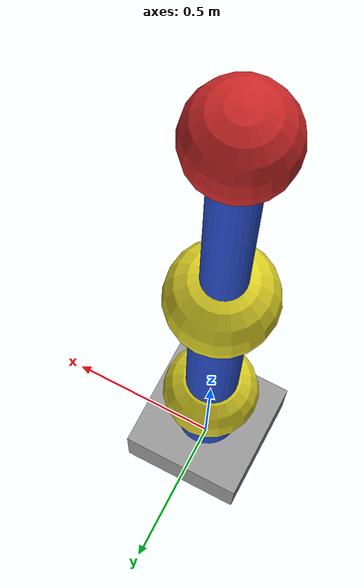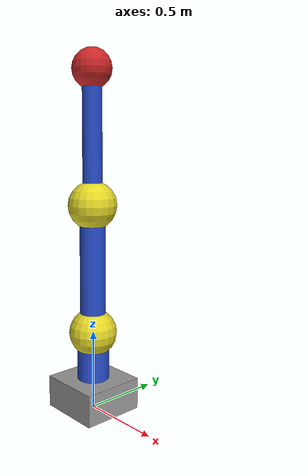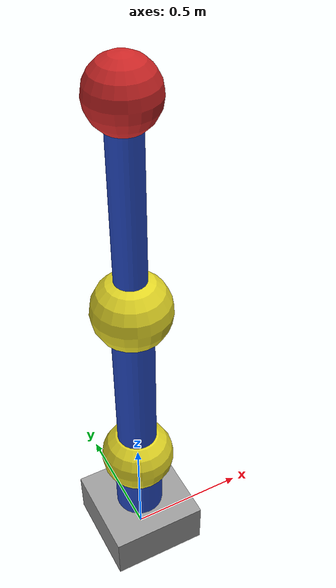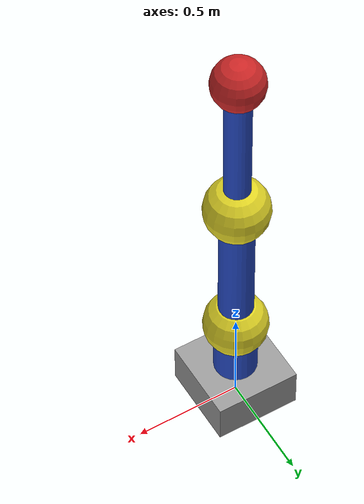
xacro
<?xml version="1.0"?>
<robot xmlns:xacro="http://www.ros.org/wiki/xacro">

    <xacro:property name="base_height" value="0.2"/>
    <xacro:property name="base_size" value="0.4" />
    <xacro:property name="joint_radius_1" value="0.1" />
    <xacro:property name="joint_length_1" value="0.3" />
    <xacro:property name="joint_length_2" value="0.8"/>

    <xacro:property name="solid_radius" value="0.15"/>

    <link name="base_link">
        <visual>
            <geometry>
                <box size="${base_size} ${base_size} ${base_height}"/>
            </geometry>
            <origin xyz="0 0 ${base_height/2}" rpy="0 0 0"/>
            <material name="grey"/>
        </visual>

        <collision>
            <geometry>
                <box size="${base_size} ${base_size} ${base_height}"/>
            </geometry>
            <origin xyz="0 0 ${base_height/2}" rpy="0 0 0"/>
        </collision>

        <xacro:box_inertia m="50" l="${2*base_size}" w="${2*base_size}" h="${2*base_height}"
                           xyz="0 0 ${base_height/2}" rpy="0 0 0"/>

    </link>

    <link name="base_footprint"/>

    <link name="link_1">
        <visual>
            <geometry>
                <cylinder radius="${joint_radius_1}" length="${joint_length_1}"/>
            </geometry>
            <origin xyz="0 0 ${joint_length_1/2}" rpy="0 0 0 "/>
            <material name="blue"/>
        </visual>

        <collision>
            <geometry>
                <cylinder radius="${joint_radius_1}" length="${joint_length_1}"/>
            </geometry>
            <origin xyz="0 0 ${joint_length_1/2}" rpy="0 0 0"/>
        </collision>

        <xacro:cylinder_inertia m="1.0" r="${2*joint_radius_1}" l="${2*joint_length_1}"
                                xyz="0 0 ${joint_length_1/2}" rpy="0 0 0"/>

    </link>

    <link name="solid_1">
        <visual>
            <geometry>
                <sphere radius="${solid_radius}"/>
            </geometry>
            <origin xyz="0 0 0" rpy="0 0 0"/>
            <material name="yellow"/>
        </visual>

        <collision>
            <geometry>
                <sphere radius="${solid_radius}"/>
            </geometry>
            <origin xyz="0 0 0" rpy="0 0 0"/>
        </collision>

        <xacro:sphere_inertia m="0.5" r="${2*solid_radius}" xyz="0 0 0" rpy="0 0 0"/>

    </link>

    <link name="link_2">
        <visual>
            <geometry>
                <cylinder radius="${joint_radius_1 * 0.8}" length="${joint_length_2}"/>
            </geometry>
            <origin xyz="0 0 ${joint_length_2/2}" rpy="0 0 0"/>
            <material name="blue"/>
        </visual>

        <collision>
            <geometry>
                <cylinder radius="${joint_radius_1 * 0.8}" length="${joint_length_2}"/>
            </geometry>
            <origin xyz="0 0 ${joint_length_2/2}" rpy="0 0 0"/>
        </collision>

        <xacro:cylinder_inertia m="1.0" r="${2*joint_radius_1 * 0.8}" l="${2*joint_length_2}"
                                xyz="0 0 ${joint_length_2/2}" rpy="0 0 0"/>

    </link>

    <link name="solid_2">
        <visual>
            <geometry>
                <sphere radius="${solid_radius}"/>
            </geometry>
            <origin xyz="0 0 0" rpy="0 0 0"/>
            <material name="yellow"/>
        </visual>

        <collision>
            <geometry>
                <sphere radius="${solid_radius}"/>
            </geometry>
            <origin xyz="0 0 0" rpy="0 0 0"/>
        </collision>

        <xacro:sphere_inertia m="0.5" r="${2*solid_radius}" xyz="0 0 0" rpy="0 0 0"/>

    </link>

    <link name="link_3">
        <visual>
            <geometry>
                <cylinder radius="${joint_radius_1 * 0.6}" length="${joint_length_2}"/>
            </geometry>
            <origin xyz="0 0 ${joint_length_2/2}" rpy="0 0 0"/>
            <material name="blue"/>
        </visual>

        <collision>
            <geometry>
                <cylinder radius="${joint_radius_1 * 0.6}" length="${joint_length_2}"/>
            </geometry>
            <origin xyz="0 0 ${joint_length_2/2}" rpy="0 0 0"/>
        </collision>

        <xacro:cylinder_inertia m="1.0" r="${2*joint_radius_1 * 0.6}" l="${2*joint_length_2}"
                                xyz="0 0 ${joint_length_2/2}" rpy="0 0 0"/>

    </link>

    <link name="gripper">
        <visual>
            <geometry>
                <sphere radius="${solid_radius * 0.8}"/>
            </geometry>
            <origin xyz="0 0 0" rpy="0 0 0"/>
            <material name="red"/>
        </visual>

        <collision>
            <geometry>
                <sphere radius="${solid_radius * 0.8}"/>
            </geometry>
            <origin xyz="0 0 0" rpy="0 0 0"/>
        </collision>

        <xacro:sphere_inertia m="0.5" r="${2*solid_radius * 0.8}" xyz="0 0 0" rpy="0 0 0"/>

    </link>

    <joint name="base_joint" type="fixed">
        <parent link="base_footprint"/>
        <child link="base_link"/>
        <origin xyz="0 0 0" rpy="0 0 0"/>
    </joint>

    <joint name="base_joint_1" type="revolute">
        <parent link="base_link"/>
        <child link="link_1"/>
        <origin xyz="0 0 ${base_height}" rpy="0 0 0"/>
        <axis xyz="0 0 1"/>
        <limit lower="0" upper="${pi/2}" effort="100" velocity="100"/>
        <dynamics friction="010" damping="10"/>
    </joint>

    <joint name="joint_1_solid" type="fixed">
        <parent link="link_1"/>
        <child link="solid_1"/>
        <origin xyz="0 0 ${joint_length_1}" rpy="0 0 0"/>
    </joint>

    <joint name="solid_1_joint" type="revolute">
        <parent link="solid_1"/>
        <child link="link_2"/>
        <origin xyz="0 0 0" rpy="0 0 0"/>
        <axis xyz="0 1 0"/>
        <limit lower="0" upper="${pi/2}" effort="100" velocity="100"/>
        <dynamics friction="100" damping="100"/>
    </joint>

    <joint name="joint_2_solid" type="fixed">
        <parent link="link_2"/>
        <child link="solid_2"/>
        <origin xyz="0 0 ${joint_length_2}" rpy="0 0 0"/>
    </joint>

    <joint name="solid_2_joint" type="revolute">
        <parent link="solid_2"/>
        <child link="link_3"/>
        <origin xyz="0 0 0" rpy="0 0 0"/>
        <axis xyz="0 1 0"/>
        <limit lower="0" upper="${pi/2}" effort="100" velocity="100"/>
        <dynamics friction="100" damping="100"/>
    </joint>

    <joint name="end_effector" type="fixed">
        <parent link="link_3"/>
        <child link="gripper"/>
        <origin xyz="0 0 ${joint_length_2}" rpy="0 0 0"/>
    </joint>

</robot>
